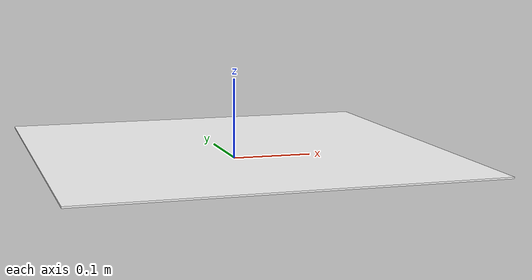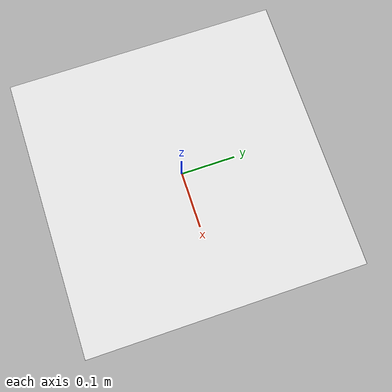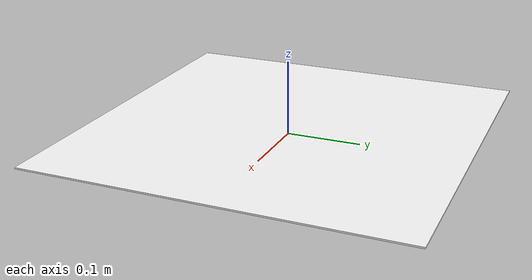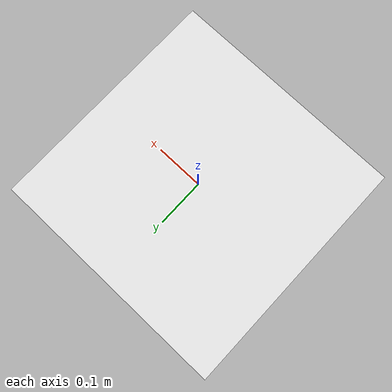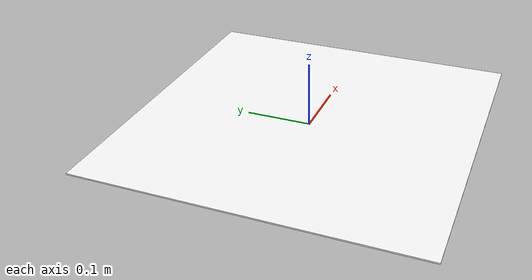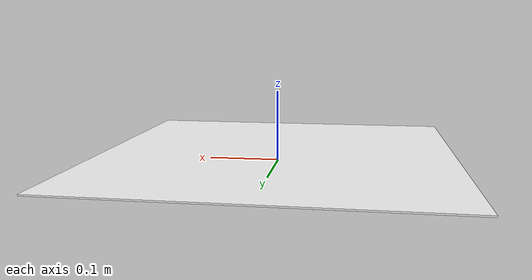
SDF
<?xml version="1.0"?>
<sdf version="1.8">
  <model name="decoy_marker">
    <static>true</static>
    <link name="link">
      <visual name="marker_visual">
        <pose>0 0 0.011 0 0 0</pose>
        <geometry>
          <box>
            <size>0.5 0.5 0.002</size>
          </box>
        </geometry>
        <material>
          <ambient>1 1 1 1</ambient>
          <diffuse>1 1 1 1</diffuse>
          <specular>0 0 0 1</specular>
          <pbr>
            <metal>
              <albedo_map>materials/textures/aruco_0.png</albedo_map>
            </metal>
          </pbr>
        </material>
      </visual>
    </link>
  </model>
</sdf>
